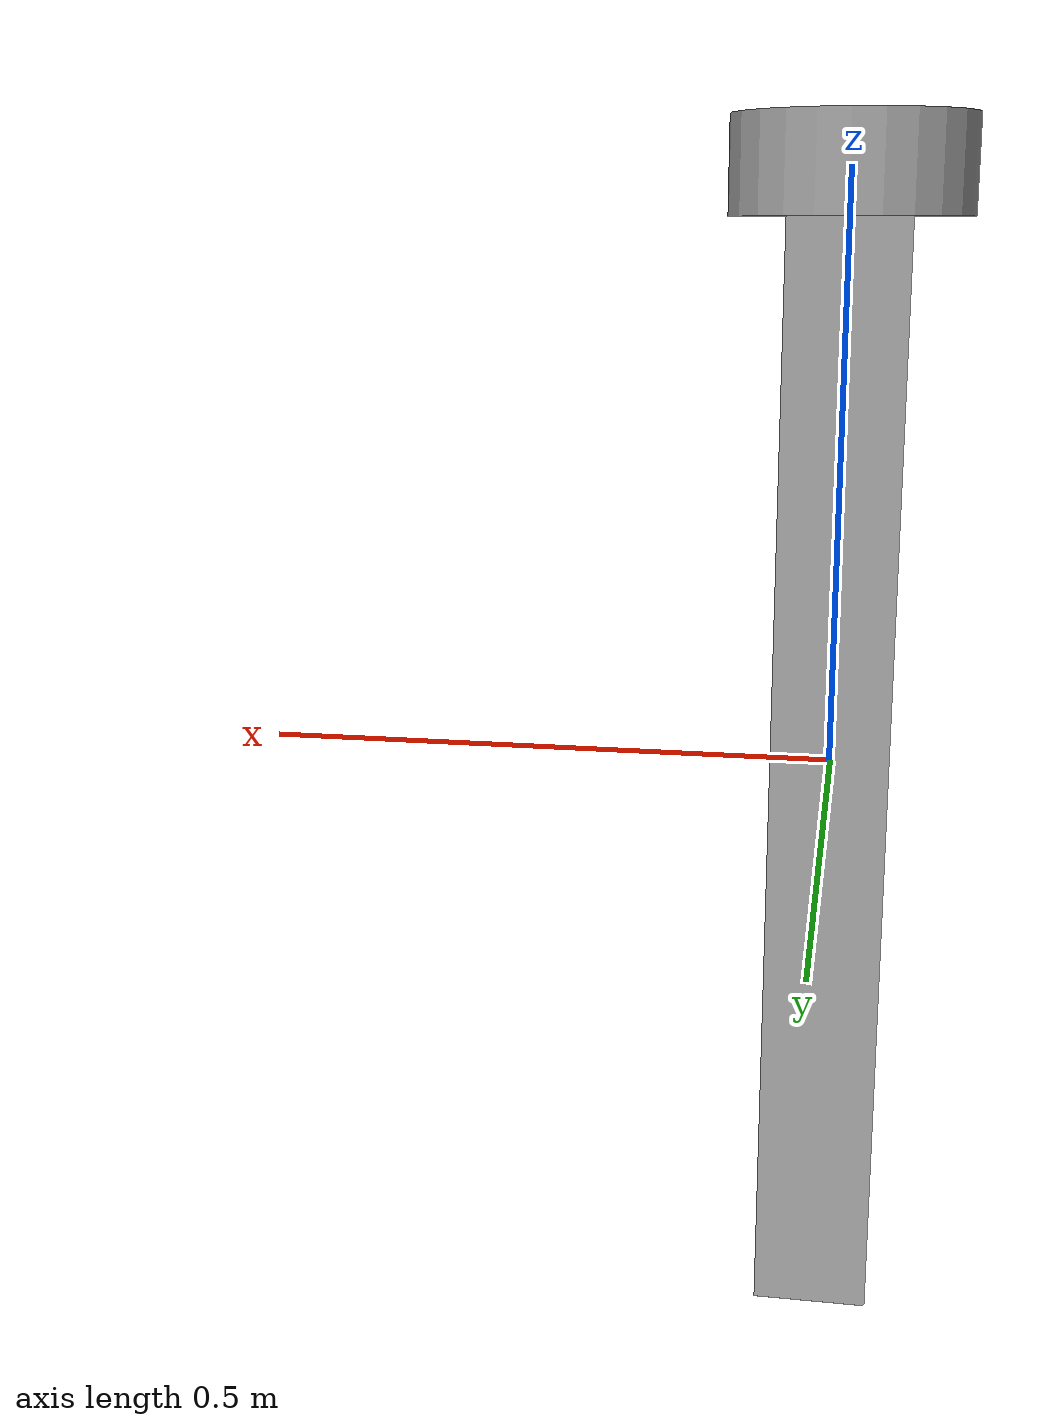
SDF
<?xml version="1.0" ?>
<sdf version="1.5">
    <model name="extendable_mast">
        <static>false</static>

        <link name="em_base_phantom">
            <pose>0 0 0   0 0 0</pose>
        </link>

        <joint name="em_base_phantom_to_fixed_base" type="fixed">
            <parent>em_base_phantom</parent>
            <child>em_fixed_base</child>
        </joint>

        <link name="em_fixed_base">

            <visual name="visual">
                <geometry>
                    <box>
                        <size>0.1 0.1 1.0</size>
                    </box>
                </geometry>
                <material>
                    <script>
                        <uri>file://media/materials/scripts/gazebo.material</uri>
                        <name>Gazebo/Grey</name>
                    </script>
                </material>
            </visual>

        </link>

        <joint name="em_seg1_lift" type="prismatic">
            <parent>em_fixed_base</parent>
            <child>em_seg_1</child>

            <axis>
                <xyz>
                    0.0 0.0 1.0
                </xyz>
                <dynamics>
                    <damping>0.05</damping>
                    <friction>0.05</friction>
                </dynamics>
                <limit>
                    <!-- Keeping the upper limit 25% higher than what's expected should move things as desired -->
                    <lower>0.0</lower>
                    <upper>1.2</upper>
                </limit>
            </axis>

        </joint>

        <link name="em_seg_1">

            <!-- mast must have a weight to let PID controller work-->
            <intertial>
                <mass>5</mass>
            </intertial>

            <visual name="visual">
                <geometry>
                    <box>
                        <size>0.1 0.1 1.0</size>
                    </box>
                </geometry>
                <material>
                    <script>
                        <uri>file://media/materials/scripts/gazebo.material</uri>
                        <name>Gazebo/Grey</name>
                    </script>
                </material>
            </visual>

        </link>

        <joint name="em_seg2_lift" type="prismatic">

            <pose relative_to="em_seg_1">0 0 0   0 0 0</pose>

            <parent>em_seg_1</parent>
            <child>em_seg_2</child>

            <axis>
                <xyz>
                    0.0 0.0 1.0
                </xyz>
                <dynamics>
                    <damping>0.05</damping>
                    <friction>0.05</friction>
                </dynamics>
                <limit>
                    <!-- Keeping the upper limit 25% higher than what's expected should move things as desired -->
                    <lower>0.0</lower>
                    <upper>1.2</upper>
                </limit>
            </axis>

        </joint>

        <link name="em_seg_2">

            <pose relative_to="em_seg_1">0 0 0   0 0 0</pose>

            <intertial>
                <mass>5</mass>
            </intertial>

            <visual name="visual">

                <geometry>
                    <box>
                        <size>0.1 0.1 1.0</size>
                    </box>
                </geometry>em_seg_2
                <material>
                    <script>
                        <uri>file://media/materials/scripts/gazebo.material</uri>
                        <name>Gazebo/Grey</name>
                    </script>
                </material>
            </visual>

        </link>

        <joint name="em_seg_2_to_em_top_mount_phantom" type="fixed">
            <parent>em_seg_2</parent>
            <child>em_top_mount_phantom</child>
        </joint>

        <link name="em_top_mount_phantom">
            <pose relative_to="em_seg_2">0 0 0.5   0 0 0</pose>

            <intertial>
                <mass>50</mass>
            </intertial>

            <visual name="visual">
                <geometry>
                    <cylinder>
                        <radius>0.1</radius>
                        <length>0.08</length>
                    </cylinder>
                </geometry>
                <material>
                    <script>
                        <uri>file://media/materials/scripts/gazebo.material</uri>
                        <name>Gazebo/Grey</name>
                    </script>
                </material>

            </visual>
        </link>

        <plugin name="extendable_mast_controller" filename="libextendable_mast_controller.so">
            <topic_name_sub_cmds>
                mast_command
            </topic_name_sub_cmds>

            <topic_name_pub_status>
                mast_status
            </topic_name_pub_status>

            <link_name_segment_mount>
                em_top_mount_phantom
            </link_name_segment_mount>

            <joint_lift_seg_1>
                em_seg1_lift
            </joint_lift_seg_1>

            <joint_lift_seg_2>
                em_seg2_lift
            </joint_lift_seg_2>

            <joint_lift_seg_1_pid>
                450.0 100.0 100.0
            </joint_lift_seg_1_pid>

            <joint_lift_seg_2_pid>
                450.0 100.0 100.0
            </joint_lift_seg_2_pid>

            <step_height>0.02</step_height>

            <publish_rate>4</publish_rate>
            <reported_min_height>1.0</reported_min_height>
            <reported_max_height>3.0</reported_max_height>
        </plugin>
    </model>
</sdf>
